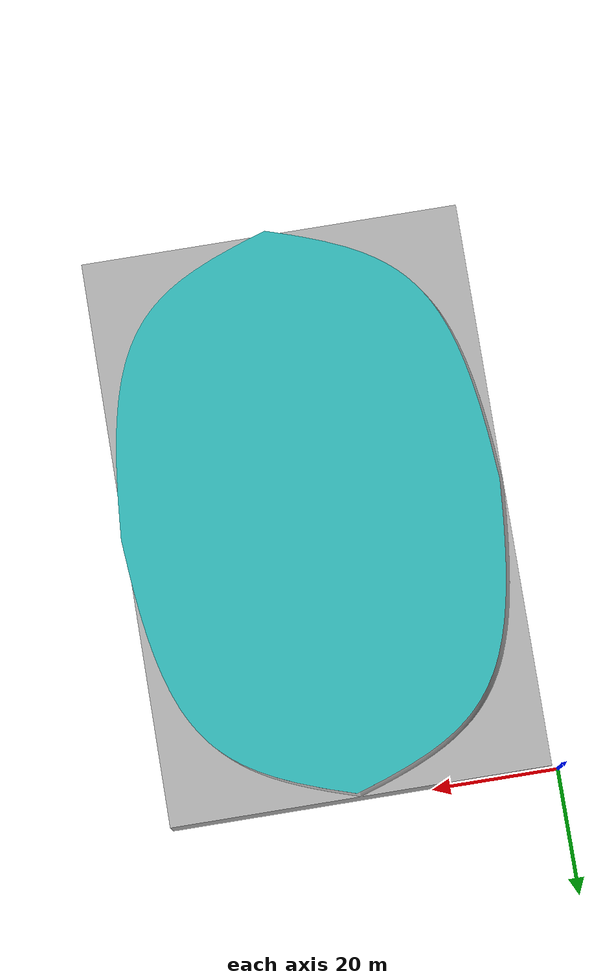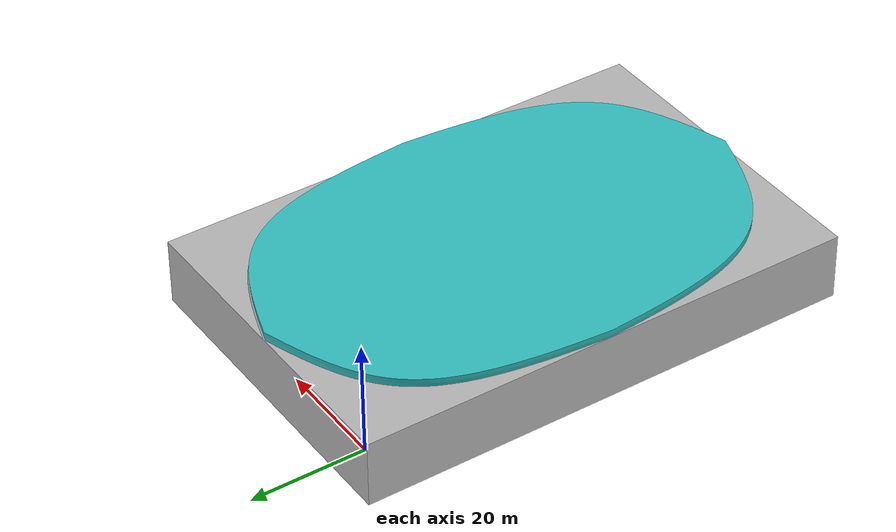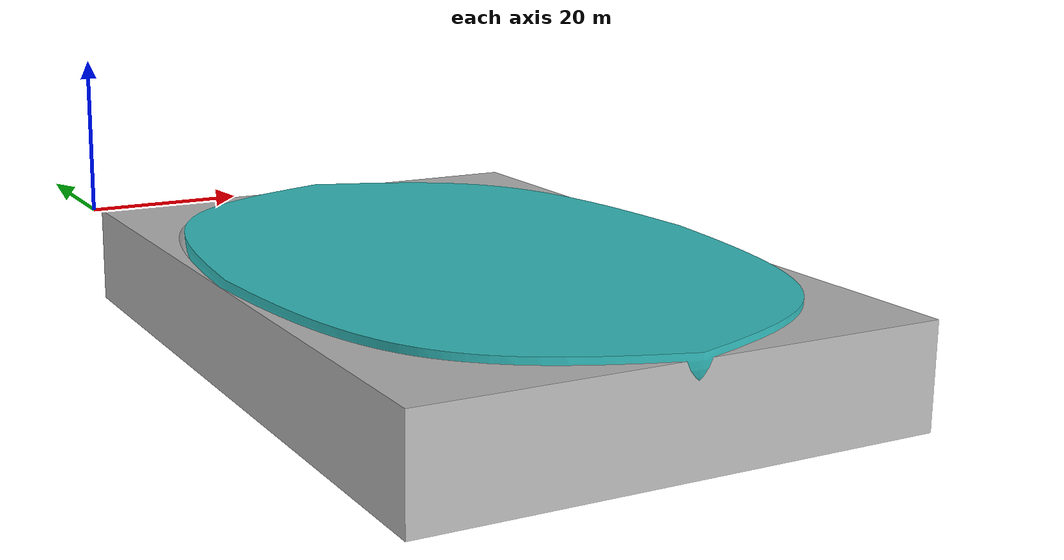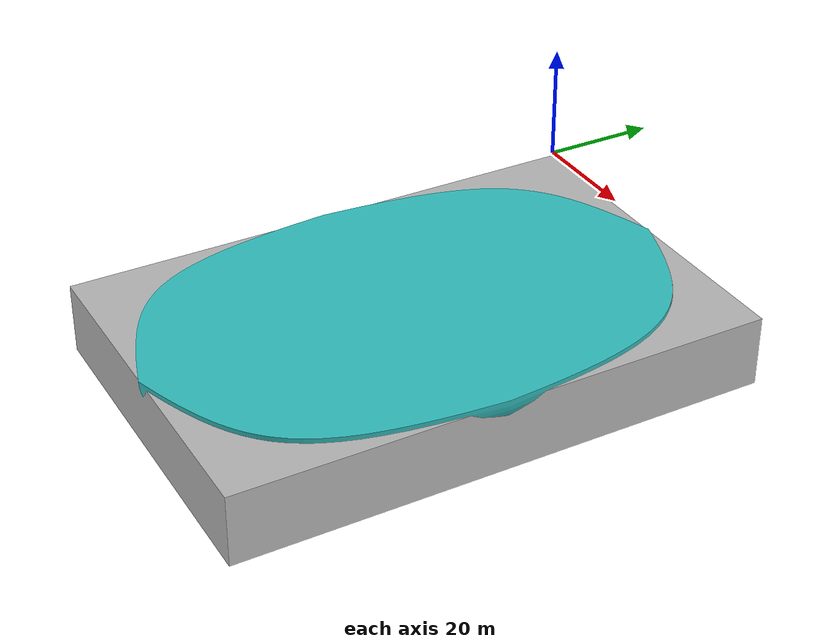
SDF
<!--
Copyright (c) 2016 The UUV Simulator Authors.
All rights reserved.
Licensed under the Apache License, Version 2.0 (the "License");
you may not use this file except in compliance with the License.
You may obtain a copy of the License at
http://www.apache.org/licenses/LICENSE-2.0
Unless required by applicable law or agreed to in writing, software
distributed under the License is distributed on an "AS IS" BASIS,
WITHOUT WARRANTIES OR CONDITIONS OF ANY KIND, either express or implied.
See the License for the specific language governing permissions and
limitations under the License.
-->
<?xml version="1.0" ?>
<sdf version="1.5">

<model name="transdec">
    <static>true</static>
    <link name="transdec_link">
        <visual name="transdec_bottom">
            <cast_shadows>false</cast_shadows>
            <pose>0 0 -12.19 1.57 0 0</pose>
            <geometry>
                <mesh><uri>model://transdec/meshes/full_transdec.STL</uri><scale>0.001 0.001 0.001</scale></mesh>
            </geometry>
            <material>
              <script>
                <uri>file://Media/materials/scripts/sand.material</uri>
                <name>UUVSimulator/SandAndStones</name>
              </script>
            </material>
        </visual>

        <collision name="transdec_bottom">
            <pose>0 0 0 0 0 0</pose>
            <geometry>
                <mesh><uri>model://transdec/meshes/full_transdec.STL</uri><scale>0.001 0.001 0.001</scale></mesh>
            </geometry>
        </collision>
        <visual name="surface">
            <pose>-1.5 1.5 -12.19 1.57 0 0</pose>
            <geometry>
                <mesh><uri>model://transdec/meshes/transdecwater.STL</uri><scale>0.001 0.001 0.001</scale></mesh>
            </geometry>
            <material>
              <script>
                <uri>file://Media/materials/scripts/water.material</uri>
                <name>UUVSimulator/StaticTurquoiseWater</name>
              </script>
            </material>
        </visual>
    </link>
</model>

</sdf>
